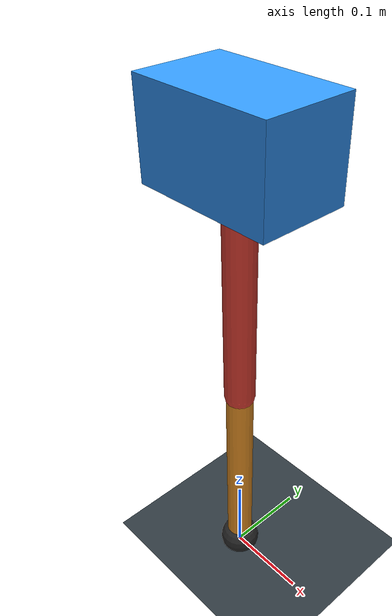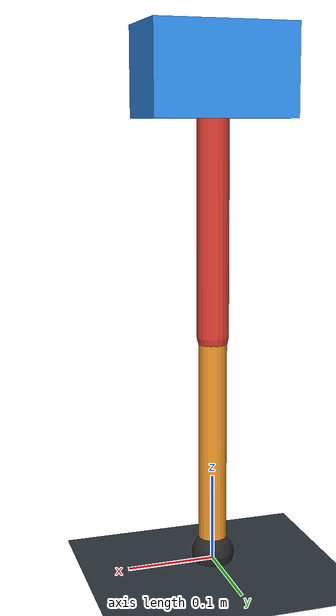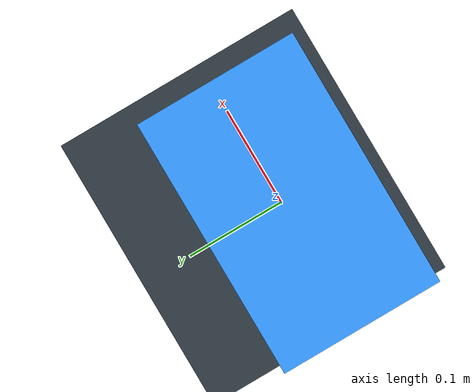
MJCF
<mujoco model="single_axis_two_bar">
  <compiler angle="radian" inertiafromgeom="true"/>
  <option timestep="0.001" integrator="implicitfast" gravity="0 0 -9.81"/>
  <default>
    <joint damping="0.08"/>
    <geom friction="1.2 0.01 0.0001" condim="3"/>
  </default>
  <worldbody>
    <geom name="floor" type="plane" size="5 5 0.1" rgba="0.18 0.22 0.25 1"/>
    <body name="carriage" pos="0 0 0.5557806936609777">
      <joint name="pole_slide" type="slide" axis="0 0 1"/>
      <geom name="payload" type="box" size="0.08 0.05 0.05" mass="2.3577943999392987" rgba="0.2 0.6 1 1"/>
      <body name="thigh" pos="0 0 0">
        <joint name="hip" type="hinge" axis="0 1 0"/>
        <geom name="thigh_link" type="capsule" fromto="0 0 0 0 0 -0.29173602179334457" size="0.018" mass="0.20786577047916993" rgba="0.9 0.25 0.2 1"/>
        <body name="shank" pos="0 0 -0.29173602179334457">
          <joint name="knee" type="hinge" axis="0 1 0"/>
          <geom name="shank_link" type="capsule" fromto="0 0 0 0 0 -0.2554605696097252" size="0.016" mass="0.18201903146053172" rgba="0.95 0.6 0.15 1"/>
          <geom name="foot" type="sphere" pos="0 0 -0.2554605696097252" size="0.025" mass="0.03" rgba="0.15 0.15 0.15 1"/>
          <site name="toe" pos="0 0 -0.2554605696097252" size="0.008"/>
        </body>
      </body>
    </body>
  </worldbody>
  <actuator>
    <motor name="hip_motor" joint="hip" ctrlrange="-16.071409843239614 16.071409843239614"/>
    <motor name="knee_motor" joint="knee" ctrlrange="-49.49352986023024 49.49352986023024"/>
  </actuator>
</mujoco>
